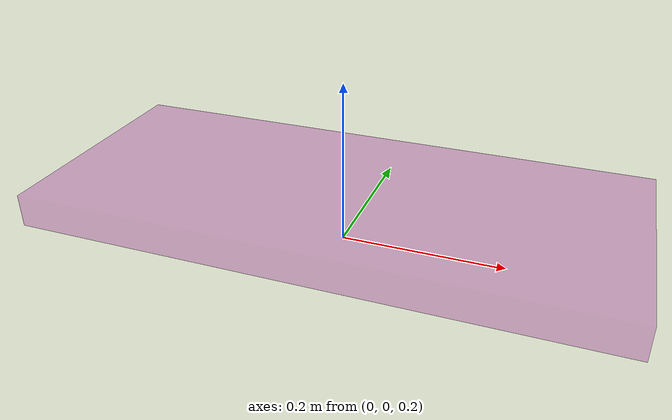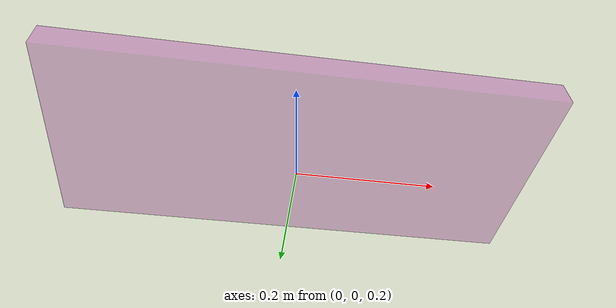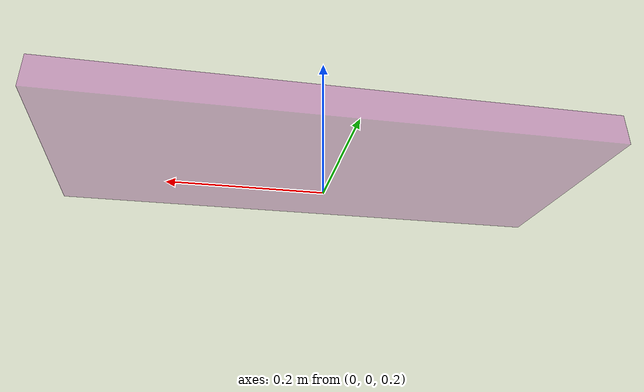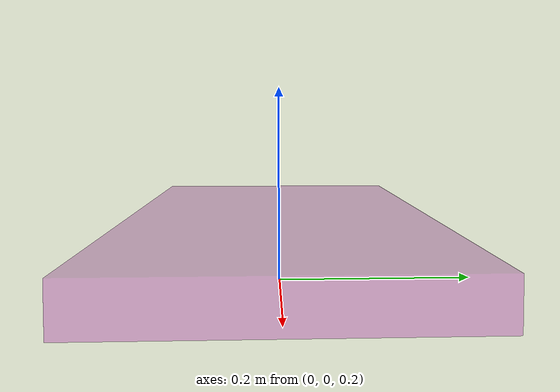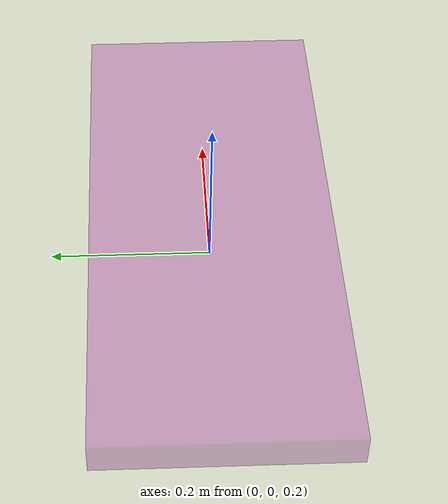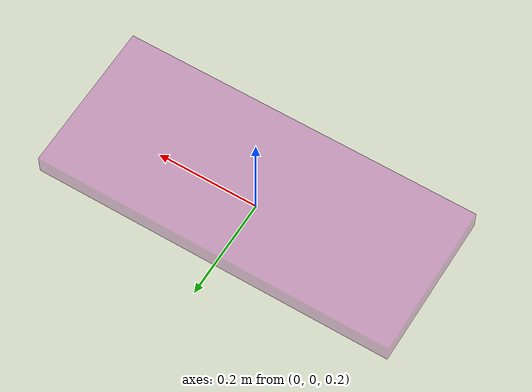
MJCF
<mujoco model="target_board">
    <worldbody>
        <body name="target_board" pos="0.0 0.0 0.0" quat="1 0 0 0">
        <geom name="target_board" pos="0 0 0.25"  size="0.35 0.15 0.02" rgba="0.6 0 0.6  0.3" type="box" mass="0.001" contype="0" conaffinity="0" />
        </body>
    </worldbody>
</mujoco>
